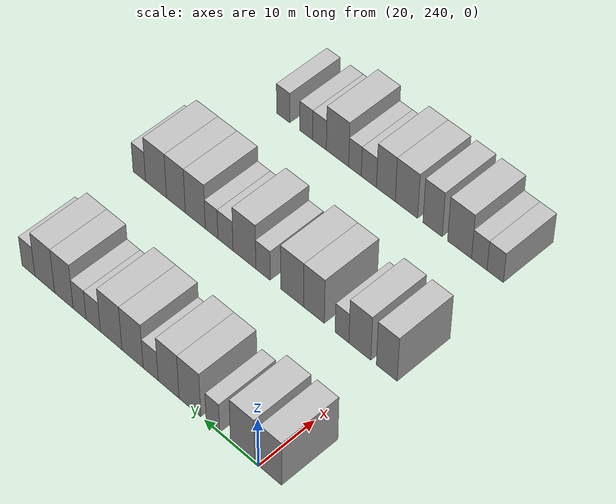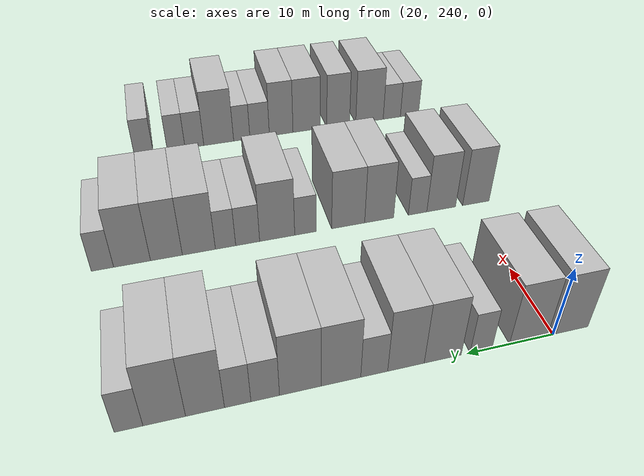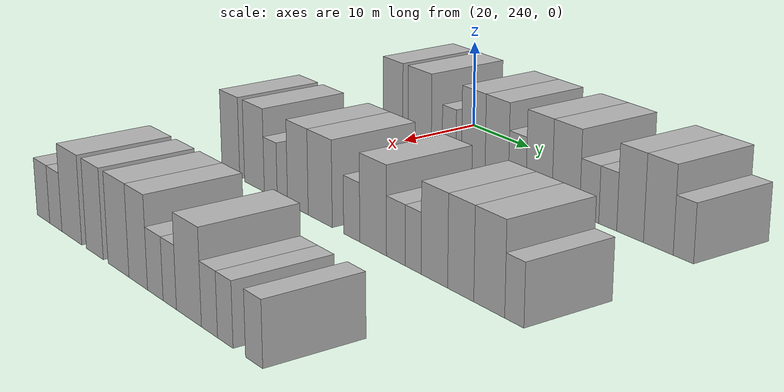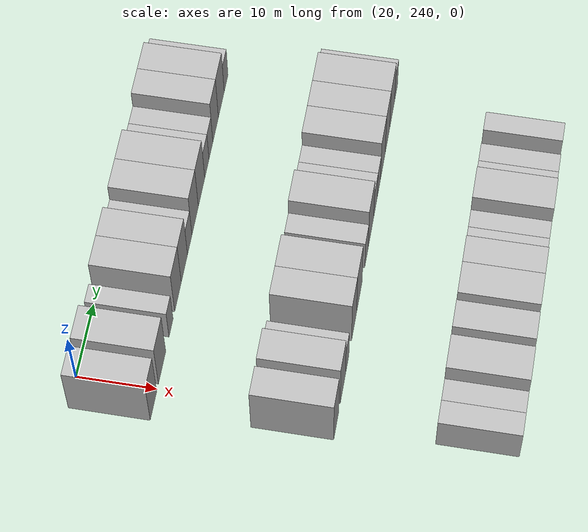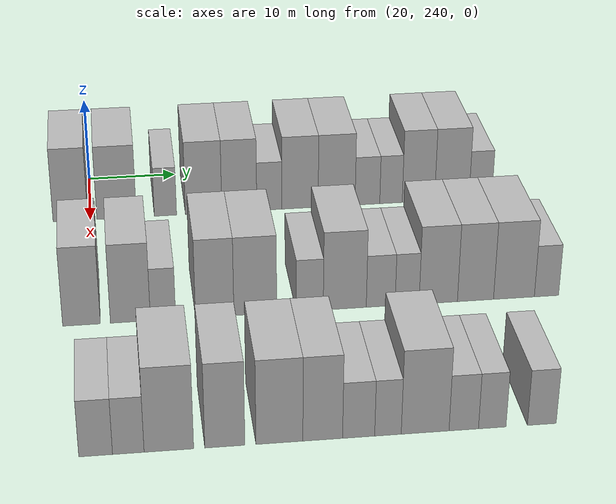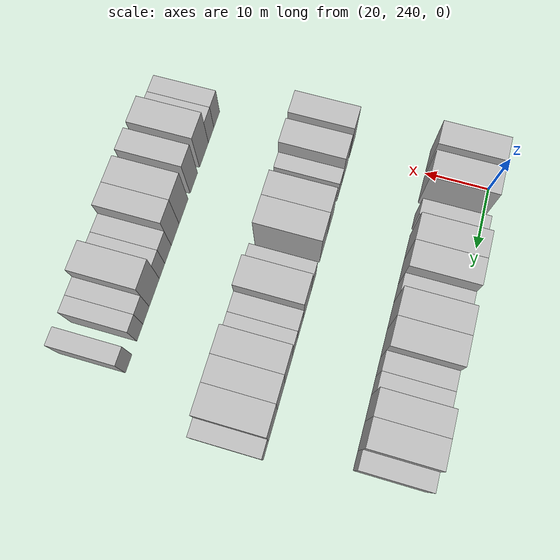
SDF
<sdf version="1.6">
 <world name="default">
  <model name="building_150">
   <static>1</static>
   <pose>25.0000 237.7819 0 0.000000 0.000000 0.000000</pose>
   <link name="link">
    <pose>0 0 4.50 0 0 0</pose>
    <collision name="collision"><geometry><box><size>10.0000 3.8595 9.0000</size></box></geometry></collision>
    <visual name="visual">
     <cast_shadows>0</cast_shadows>
     <geometry><box><size>10.0000 3.8595 9.0000</size></box></geometry>
     <material>
      <script>
       <uri>model://HANNAS_wall/materials/scripts</uri>
       <uri>model://HANNAS_wall/materials/textures</uri>
       <name>vrc/HANNAS_wall</name>
      </script>
     </material>
    </visual>
   </link>
  </model>
  <model name="building_151">
   <static>1</static>
   <pose>25.0000 242.9237 0 0.000000 0.000000 0.000000</pose>
   <link name="link">
    <pose>0 0 4.50 0 0 0</pose>
    <collision name="collision"><geometry><box><size>10.0000 4.4240 9.0000</size></box></geometry></collision>
    <visual name="visual">
     <cast_shadows>0</cast_shadows>
     <geometry><box><size>10.0000 4.4240 9.0000</size></box></geometry>
     <material>
      <script>
       <uri>model://HANNAS_wall/materials/scripts</uri>
       <uri>model://HANNAS_wall/materials/textures</uri>
       <name>vrc/HANNAS_wall</name>
      </script>
     </material>
    </visual>
   </link>
  </model>
  <model name="building_152">
   <static>1</static>
   <pose>25.0000 248.3873 0 0.000000 0.000000 0.000000</pose>
   <link name="link">
    <pose>0 0 3.00 0 0 0</pose>
    <collision name="collision"><geometry><box><size>10.0000 2.5032 6.0000</size></box></geometry></collision>
    <visual name="visual">
     <cast_shadows>0</cast_shadows>
     <geometry><box><size>10.0000 2.5032 6.0000</size></box></geometry>
     <material>
      <script>
       <uri>model://HANNAS_wall/materials/scripts</uri>
       <uri>model://HANNAS_wall/materials/textures</uri>
       <name>vrc/HANNAS_wall</name>
      </script>
     </material>
    </visual>
   </link>
  </model>
  <model name="building_153">
   <static>1</static>
   <pose>25.0000 252.6890 0 0.000000 0.000000 0.000000</pose>
   <link name="link">
    <pose>0 0 4.50 0 0 0</pose>
    <collision name="collision"><geometry><box><size>10.0000 4.1002 9.0000</size></box></geometry></collision>
    <visual name="visual">
     <cast_shadows>0</cast_shadows>
     <geometry><box><size>10.0000 4.1002 9.0000</size></box></geometry>
     <material>
      <script>
       <uri>model://HANNAS_wall/materials/scripts</uri>
       <uri>model://HANNAS_wall/materials/textures</uri>
       <name>vrc/HANNAS_wall</name>
      </script>
     </material>
    </visual>
   </link>
  </model>
  <model name="building_154">
   <static>1</static>
   <pose>25.0000 256.7204 0 0.000000 0.000000 0.000000</pose>
   <link name="link">
    <pose>0 0 4.50 0 0 0</pose>
    <collision name="collision"><geometry><box><size>10.0000 3.9628 9.0000</size></box></geometry></collision>
    <visual name="visual">
     <cast_shadows>0</cast_shadows>
     <geometry><box><size>10.0000 3.9628 9.0000</size></box></geometry>
     <material>
      <script>
       <uri>model://HANNAS_wall/materials/scripts</uri>
       <uri>model://HANNAS_wall/materials/textures</uri>
       <name>vrc/HANNAS_wall</name>
      </script>
     </material>
    </visual>
   </link>
  </model>
  <model name="building_155">
   <static>1</static>
   <pose>25.0000 260.1354 0 0.000000 0.000000 0.000000</pose>
   <link name="link">
    <pose>0 0 3.00 0 0 0</pose>
    <collision name="collision"><geometry><box><size>10.0000 2.8671 6.0000</size></box></geometry></collision>
    <visual name="visual">
     <cast_shadows>0</cast_shadows>
     <geometry><box><size>10.0000 2.8671 6.0000</size></box></geometry>
     <material>
      <script>
       <uri>model://HANNAS_wall/materials/scripts</uri>
       <uri>model://HANNAS_wall/materials/textures</uri>
       <name>vrc/HANNAS_wall</name>
      </script>
     </material>
    </visual>
   </link>
  </model>
  <model name="building_156">
   <static>1</static>
   <pose>25.0000 263.6339 0 0.000000 0.000000 0.000000</pose>
   <link name="link">
    <pose>0 0 4.50 0 0 0</pose>
    <collision name="collision"><geometry><box><size>10.0000 4.1300 9.0000</size></box></geometry></collision>
    <visual name="visual">
     <cast_shadows>0</cast_shadows>
     <geometry><box><size>10.0000 4.1300 9.0000</size></box></geometry>
     <material>
      <script>
       <uri>model://HANNAS_wall/materials/scripts</uri>
       <uri>model://HANNAS_wall/materials/textures</uri>
       <name>vrc/HANNAS_wall</name>
      </script>
     </material>
    </visual>
   </link>
  </model>
  <model name="building_157">
   <static>1</static>
   <pose>25.0000 267.8165 0 0.000000 0.000000 0.000000</pose>
   <link name="link">
    <pose>0 0 4.50 0 0 0</pose>
    <collision name="collision"><geometry><box><size>10.0000 4.2351 9.0000</size></box></geometry></collision>
    <visual name="visual">
     <cast_shadows>0</cast_shadows>
     <geometry><box><size>10.0000 4.2351 9.0000</size></box></geometry>
     <material>
      <script>
       <uri>model://HANNAS_wall/materials/scripts</uri>
       <uri>model://HANNAS_wall/materials/textures</uri>
       <name>vrc/HANNAS_wall</name>
      </script>
     </material>
    </visual>
   </link>
  </model>
  <model name="building_158">
   <static>1</static>
   <pose>25.0000 271.3555 0 0.000000 0.000000 0.000000</pose>
   <link name="link">
    <pose>0 0 3.00 0 0 0</pose>
    <collision name="collision"><geometry><box><size>10.0000 2.8431 6.0000</size></box></geometry></collision>
    <visual name="visual">
     <cast_shadows>0</cast_shadows>
     <geometry><box><size>10.0000 2.8431 6.0000</size></box></geometry>
     <material>
      <script>
       <uri>model://HANNAS_wall/materials/scripts</uri>
       <uri>model://HANNAS_wall/materials/textures</uri>
       <name>vrc/HANNAS_wall</name>
      </script>
     </material>
    </visual>
   </link>
  </model>
  <model name="building_159">
   <static>1</static>
   <pose>25.0000 274.0740 0 0.000000 0.000000 0.000000</pose>
   <link name="link">
    <pose>0 0 3.00 0 0 0</pose>
    <collision name="collision"><geometry><box><size>10.0000 2.5939 6.0000</size></box></geometry></collision>
    <visual name="visual">
     <cast_shadows>0</cast_shadows>
     <geometry><box><size>10.0000 2.5939 6.0000</size></box></geometry>
     <material>
      <script>
       <uri>model://HANNAS_wall/materials/scripts</uri>
       <uri>model://HANNAS_wall/materials/textures</uri>
       <name>vrc/HANNAS_wall</name>
      </script>
     </material>
    </visual>
   </link>
  </model>
  <model name="building_160">
   <static>1</static>
   <pose>25.0000 277.2462 0 0.000000 0.000000 0.000000</pose>
   <link name="link">
    <pose>0 0 4.50 0 0 0</pose>
    <collision name="collision"><geometry><box><size>10.0000 3.7505 9.0000</size></box></geometry></collision>
    <visual name="visual">
     <cast_shadows>0</cast_shadows>
     <geometry><box><size>10.0000 3.7505 9.0000</size></box></geometry>
     <material>
      <script>
       <uri>model://HANNAS_wall/materials/scripts</uri>
       <uri>model://HANNAS_wall/materials/textures</uri>
       <name>vrc/HANNAS_wall</name>
      </script>
     </material>
    </visual>
   </link>
  </model>
  <model name="building_161">
   <static>1</static>
   <pose>25.0000 281.1280 0 0.000000 0.000000 0.000000</pose>
   <link name="link">
    <pose>0 0 4.50 0 0 0</pose>
    <collision name="collision"><geometry><box><size>10.0000 4.0131 9.0000</size></box></geometry></collision>
    <visual name="visual">
     <cast_shadows>0</cast_shadows>
     <geometry><box><size>10.0000 4.0131 9.0000</size></box></geometry>
     <material>
      <script>
       <uri>model://HANNAS_wall/materials/scripts</uri>
       <uri>model://HANNAS_wall/materials/textures</uri>
       <name>vrc/HANNAS_wall</name>
      </script>
     </material>
    </visual>
   </link>
  </model>
  <model name="building_162">
   <static>1</static>
   <pose>25.0000 284.4673 0 0.000000 0.000000 0.000000</pose>
   <link name="link">
    <pose>0 0 3.00 0 0 0</pose>
    <collision name="collision"><geometry><box><size>10.0000 2.6654 6.0000</size></box></geometry></collision>
    <visual name="visual">
     <cast_shadows>0</cast_shadows>
     <geometry><box><size>10.0000 2.6654 6.0000</size></box></geometry>
     <material>
      <script>
       <uri>model://HANNAS_wall/materials/scripts</uri>
       <uri>model://HANNAS_wall/materials/textures</uri>
       <name>vrc/HANNAS_wall</name>
      </script>
     </material>
    </visual>
   </link>
  </model>
  <model name="building_323">
   <static>1</static>
   <pose>47.0000 238.8396 0 0.000000 0.000000 0.000000</pose>
   <link name="link">
    <pose>0 0 4.50 0 0 0</pose>
    <collision name="collision"><geometry><box><size>10.0000 3.7659 9.0000</size></box></geometry></collision>
    <visual name="visual">
     <cast_shadows>0</cast_shadows>
     <geometry><box><size>10.0000 3.7659 9.0000</size></box></geometry>
     <material>
      <script>
       <uri>model://HANNAS_wall/materials/scripts</uri>
       <uri>model://HANNAS_wall/materials/textures</uri>
       <name>vrc/HANNAS_wall</name>
      </script>
     </material>
    </visual>
   </link>
  </model>
  <model name="building_324">
   <static>1</static>
   <pose>47.0000 243.7291 0 0.000000 0.000000 0.000000</pose>
   <link name="link">
    <pose>0 0 4.50 0 0 0</pose>
    <collision name="collision"><geometry><box><size>10.0000 4.0131 9.0000</size></box></geometry></collision>
    <visual name="visual">
     <cast_shadows>0</cast_shadows>
     <geometry><box><size>10.0000 4.0131 9.0000</size></box></geometry>
     <material>
      <script>
       <uri>model://HANNAS_wall/materials/scripts</uri>
       <uri>model://HANNAS_wall/materials/textures</uri>
       <name>vrc/HANNAS_wall</name>
      </script>
     </material>
    </visual>
   </link>
  </model>
  <model name="building_325">
   <static>1</static>
   <pose>47.0000 247.0107 0 0.000000 0.000000 0.000000</pose>
   <link name="link">
    <pose>0 0 3.00 0 0 0</pose>
    <collision name="collision"><geometry><box><size>10.0000 2.5500 6.0000</size></box></geometry></collision>
    <visual name="visual">
     <cast_shadows>0</cast_shadows>
     <geometry><box><size>10.0000 2.5500 6.0000</size></box></geometry>
     <material>
      <script>
       <uri>model://HANNAS_wall/materials/scripts</uri>
       <uri>model://HANNAS_wall/materials/textures</uri>
       <name>vrc/HANNAS_wall</name>
      </script>
     </material>
    </visual>
   </link>
  </model>
  <model name="building_326">
   <static>1</static>
   <pose>47.0000 252.2330 0 0.000000 0.000000 0.000000</pose>
   <link name="link">
    <pose>0 0 4.50 0 0 0</pose>
    <collision name="collision"><geometry><box><size>10.0000 3.8947 9.0000</size></box></geometry></collision>
    <visual name="visual">
     <cast_shadows>0</cast_shadows>
     <geometry><box><size>10.0000 3.8947 9.0000</size></box></geometry>
     <material>
      <script>
       <uri>model://HANNAS_wall/materials/scripts</uri>
       <uri>model://HANNAS_wall/materials/textures</uri>
       <name>vrc/HANNAS_wall</name>
      </script>
     </material>
    </visual>
   </link>
  </model>
  <model name="building_327">
   <static>1</static>
   <pose>47.0000 256.3607 0 0.000000 0.000000 0.000000</pose>
   <link name="link">
    <pose>0 0 4.50 0 0 0</pose>
    <collision name="collision"><geometry><box><size>10.0000 4.3606 9.0000</size></box></geometry></collision>
    <visual name="visual">
     <cast_shadows>0</cast_shadows>
     <geometry><box><size>10.0000 4.3606 9.0000</size></box></geometry>
     <material>
      <script>
       <uri>model://HANNAS_wall/materials/scripts</uri>
       <uri>model://HANNAS_wall/materials/textures</uri>
       <name>vrc/HANNAS_wall</name>
      </script>
     </material>
    </visual>
   </link>
  </model>
  <model name="building_328">
   <static>1</static>
   <pose>47.0000 261.9287 0 0.000000 0.000000 0.000000</pose>
   <link name="link">
    <pose>0 0 3.00 0 0 0</pose>
    <collision name="collision"><geometry><box><size>10.0000 2.7754 6.0000</size></box></geometry></collision>
    <visual name="visual">
     <cast_shadows>0</cast_shadows>
     <geometry><box><size>10.0000 2.7754 6.0000</size></box></geometry>
     <material>
      <script>
       <uri>model://HANNAS_wall/materials/scripts</uri>
       <uri>model://HANNAS_wall/materials/textures</uri>
       <name>vrc/HANNAS_wall</name>
      </script>
     </material>
    </visual>
   </link>
  </model>
  <model name="building_329">
   <static>1</static>
   <pose>47.0000 265.5324 0 0.000000 0.000000 0.000000</pose>
   <link name="link">
    <pose>0 0 4.50 0 0 0</pose>
    <collision name="collision"><geometry><box><size>10.0000 4.4320 9.0000</size></box></geometry></collision>
    <visual name="visual">
     <cast_shadows>0</cast_shadows>
     <geometry><box><size>10.0000 4.4320 9.0000</size></box></geometry>
     <material>
      <script>
       <uri>model://HANNAS_wall/materials/scripts</uri>
       <uri>model://HANNAS_wall/materials/textures</uri>
       <name>vrc/HANNAS_wall</name>
      </script>
     </material>
    </visual>
   </link>
  </model>
  <model name="building_330">
   <static>1</static>
   <pose>47.0000 269.2392 0 0.000000 0.000000 0.000000</pose>
   <link name="link">
    <pose>0 0 3.00 0 0 0</pose>
    <collision name="collision"><geometry><box><size>10.0000 2.9815 6.0000</size></box></geometry></collision>
    <visual name="visual">
     <cast_shadows>0</cast_shadows>
     <geometry><box><size>10.0000 2.9815 6.0000</size></box></geometry>
     <material>
      <script>
       <uri>model://HANNAS_wall/materials/scripts</uri>
       <uri>model://HANNAS_wall/materials/textures</uri>
       <name>vrc/HANNAS_wall</name>
      </script>
     </material>
    </visual>
   </link>
  </model>
  <model name="building_331">
   <static>1</static>
   <pose>47.0000 271.9747 0 0.000000 0.000000 0.000000</pose>
   <link name="link">
    <pose>0 0 3.00 0 0 0</pose>
    <collision name="collision"><geometry><box><size>10.0000 2.4894 6.0000</size></box></geometry></collision>
    <visual name="visual">
     <cast_shadows>0</cast_shadows>
     <geometry><box><size>10.0000 2.4894 6.0000</size></box></geometry>
     <material>
      <script>
       <uri>model://HANNAS_wall/materials/scripts</uri>
       <uri>model://HANNAS_wall/materials/textures</uri>
       <name>vrc/HANNAS_wall</name>
      </script>
     </material>
    </visual>
   </link>
  </model>
  <model name="building_332">
   <static>1</static>
   <pose>47.0000 275.2201 0 0.000000 0.000000 0.000000</pose>
   <link name="link">
    <pose>0 0 4.50 0 0 0</pose>
    <collision name="collision"><geometry><box><size>10.0000 4.0013 9.0000</size></box></geometry></collision>
    <visual name="visual">
     <cast_shadows>0</cast_shadows>
     <geometry><box><size>10.0000 4.0013 9.0000</size></box></geometry>
     <material>
      <script>
       <uri>model://HANNAS_wall/materials/scripts</uri>
       <uri>model://HANNAS_wall/materials/textures</uri>
       <name>vrc/HANNAS_wall</name>
      </script>
     </material>
    </visual>
   </link>
  </model>
  <model name="building_333">
   <static>1</static>
   <pose>47.0000 279.1128 0 0.000000 0.000000 0.000000</pose>
   <link name="link">
    <pose>0 0 4.50 0 0 0</pose>
    <collision name="collision"><geometry><box><size>10.0000 3.7842 9.0000</size></box></geometry></collision>
    <visual name="visual">
     <cast_shadows>0</cast_shadows>
     <geometry><box><size>10.0000 3.7842 9.0000</size></box></geometry>
     <material>
      <script>
       <uri>model://HANNAS_wall/materials/scripts</uri>
       <uri>model://HANNAS_wall/materials/textures</uri>
       <name>vrc/HANNAS_wall</name>
      </script>
     </material>
    </visual>
   </link>
  </model>
  <model name="building_334">
   <static>1</static>
   <pose>47.0000 283.1528 0 0.000000 0.000000 0.000000</pose>
   <link name="link">
    <pose>0 0 4.50 0 0 0</pose>
    <collision name="collision"><geometry><box><size>10.0000 4.2956 9.0000</size></box></geometry></collision>
    <visual name="visual">
     <cast_shadows>0</cast_shadows>
     <geometry><box><size>10.0000 4.2956 9.0000</size></box></geometry>
     <material>
      <script>
       <uri>model://HANNAS_wall/materials/scripts</uri>
       <uri>model://HANNAS_wall/materials/textures</uri>
       <name>vrc/HANNAS_wall</name>
      </script>
     </material>
    </visual>
   </link>
  </model>
  <model name="building_335">
   <static>1</static>
   <pose>47.0000 286.5836 0 0.000000 0.000000 0.000000</pose>
   <link name="link">
    <pose>0 0 3.00 0 0 0</pose>
    <collision name="collision"><geometry><box><size>10.0000 2.5661 6.0000</size></box></geometry></collision>
    <visual name="visual">
     <cast_shadows>0</cast_shadows>
     <geometry><box><size>10.0000 2.5661 6.0000</size></box></geometry>
     <material>
      <script>
       <uri>model://HANNAS_wall/materials/scripts</uri>
       <uri>model://HANNAS_wall/materials/textures</uri>
       <name>vrc/HANNAS_wall</name>
      </script>
     </material>
    </visual>
   </link>
  </model>
  <model name="building_515">
   <static>1</static>
   <pose>69.0000 239.9106 0 0.000000 0.000000 0.000000</pose>
   <link name="link">
    <pose>0 0 3.00 0 0 0</pose>
    <collision name="collision"><geometry><box><size>10.0000 2.9909 6.0000</size></box></geometry></collision>
    <visual name="visual">
     <cast_shadows>0</cast_shadows>
     <geometry><box><size>10.0000 2.9909 6.0000</size></box></geometry>
     <material>
      <script>
       <uri>model://HANNAS_wall/materials/scripts</uri>
       <uri>model://HANNAS_wall/materials/textures</uri>
       <name>vrc/HANNAS_wall</name>
      </script>
     </material>
    </visual>
   </link>
  </model>
  <model name="building_516">
   <static>1</static>
   <pose>69.0000 242.8098 0 0.000000 0.000000 0.000000</pose>
   <link name="link">
    <pose>0 0 3.00 0 0 0</pose>
    <collision name="collision"><geometry><box><size>10.0000 2.8075 6.0000</size></box></geometry></collision>
    <visual name="visual">
     <cast_shadows>0</cast_shadows>
     <geometry><box><size>10.0000 2.8075 6.0000</size></box></geometry>
     <material>
      <script>
       <uri>model://HANNAS_wall/materials/scripts</uri>
       <uri>model://HANNAS_wall/materials/textures</uri>
       <name>vrc/HANNAS_wall</name>
      </script>
     </material>
    </visual>
   </link>
  </model>
  <model name="building_517">
   <static>1</static>
   <pose>69.0000 246.4276 0 0.000000 0.000000 0.000000</pose>
   <link name="link">
    <pose>0 0 4.50 0 0 0</pose>
    <collision name="collision"><geometry><box><size>10.0000 4.4281 9.0000</size></box></geometry></collision>
    <visual name="visual">
     <cast_shadows>0</cast_shadows>
     <geometry><box><size>10.0000 4.4281 9.0000</size></box></geometry>
     <material>
      <script>
       <uri>model://HANNAS_wall/materials/scripts</uri>
       <uri>model://HANNAS_wall/materials/textures</uri>
       <name>vrc/HANNAS_wall</name>
      </script>
     </material>
    </visual>
   </link>
  </model>
  <model name="building_518">
   <static>1</static>
   <pose>69.0000 251.4443 0 0.000000 0.000000 0.000000</pose>
   <link name="link">
    <pose>0 0 4.50 0 0 0</pose>
    <collision name="collision"><geometry><box><size>10.0000 3.6053 9.0000</size></box></geometry></collision>
    <visual name="visual">
     <cast_shadows>0</cast_shadows>
     <geometry><box><size>10.0000 3.6053 9.0000</size></box></geometry>
     <material>
      <script>
       <uri>model://HANNAS_wall/materials/scripts</uri>
       <uri>model://HANNAS_wall/materials/textures</uri>
       <name>vrc/HANNAS_wall</name>
      </script>
     </material>
    </visual>
   </link>
  </model>
  <model name="building_519">
   <static>1</static>
   <pose>69.0000 256.3707 0 0.000000 0.000000 0.000000</pose>
   <link name="link">
    <pose>0 0 4.50 0 0 0</pose>
    <collision name="collision"><geometry><box><size>10.0000 4.2476 9.0000</size></box></geometry></collision>
    <visual name="visual">
     <cast_shadows>0</cast_shadows>
     <geometry><box><size>10.0000 4.2476 9.0000</size></box></geometry>
     <material>
      <script>
       <uri>model://HANNAS_wall/materials/scripts</uri>
       <uri>model://HANNAS_wall/materials/textures</uri>
       <name>vrc/HANNAS_wall</name>
      </script>
     </material>
    </visual>
   </link>
  </model>
  <model name="building_520">
   <static>1</static>
   <pose>69.0000 260.3013 0 0.000000 0.000000 0.000000</pose>
   <link name="link">
    <pose>0 0 4.50 0 0 0</pose>
    <collision name="collision"><geometry><box><size>10.0000 3.6137 9.0000</size></box></geometry></collision>
    <visual name="visual">
     <cast_shadows>0</cast_shadows>
     <geometry><box><size>10.0000 3.6137 9.0000</size></box></geometry>
     <material>
      <script>
       <uri>model://HANNAS_wall/materials/scripts</uri>
       <uri>model://HANNAS_wall/materials/textures</uri>
       <name>vrc/HANNAS_wall</name>
      </script>
     </material>
    </visual>
   </link>
  </model>
  <model name="building_521">
   <static>1</static>
   <pose>69.0000 263.5767 0 0.000000 0.000000 0.000000</pose>
   <link name="link">
    <pose>0 0 3.00 0 0 0</pose>
    <collision name="collision"><geometry><box><size>10.0000 2.9371 6.0000</size></box></geometry></collision>
    <visual name="visual">
     <cast_shadows>0</cast_shadows>
     <geometry><box><size>10.0000 2.9371 6.0000</size></box></geometry>
     <material>
      <script>
       <uri>model://HANNAS_wall/materials/scripts</uri>
       <uri>model://HANNAS_wall/materials/textures</uri>
       <name>vrc/HANNAS_wall</name>
      </script>
     </material>
    </visual>
   </link>
  </model>
  <model name="building_522">
   <static>1</static>
   <pose>69.0000 266.2631 0 0.000000 0.000000 0.000000</pose>
   <link name="link">
    <pose>0 0 3.00 0 0 0</pose>
    <collision name="collision"><geometry><box><size>10.0000 2.4357 6.0000</size></box></geometry></collision>
    <visual name="visual">
     <cast_shadows>0</cast_shadows>
     <geometry><box><size>10.0000 2.4357 6.0000</size></box></geometry>
     <material>
      <script>
       <uri>model://HANNAS_wall/materials/scripts</uri>
       <uri>model://HANNAS_wall/materials/textures</uri>
       <name>vrc/HANNAS_wall</name>
      </script>
     </material>
    </visual>
   </link>
  </model>
  <model name="building_523">
   <static>1</static>
   <pose>69.0000 269.6850 0 0.000000 0.000000 0.000000</pose>
   <link name="link">
    <pose>0 0 4.50 0 0 0</pose>
    <collision name="collision"><geometry><box><size>10.0000 4.4081 9.0000</size></box></geometry></collision>
    <visual name="visual">
     <cast_shadows>0</cast_shadows>
     <geometry><box><size>10.0000 4.4081 9.0000</size></box></geometry>
     <material>
      <script>
       <uri>model://HANNAS_wall/materials/scripts</uri>
       <uri>model://HANNAS_wall/materials/textures</uri>
       <name>vrc/HANNAS_wall</name>
      </script>
     </material>
    </visual>
   </link>
  </model>
  <model name="building_524">
   <static>1</static>
   <pose>69.0000 273.2536 0 0.000000 0.000000 0.000000</pose>
   <link name="link">
    <pose>0 0 3.00 0 0 0</pose>
    <collision name="collision"><geometry><box><size>10.0000 2.7291 6.0000</size></box></geometry></collision>
    <visual name="visual">
     <cast_shadows>0</cast_shadows>
     <geometry><box><size>10.0000 2.7291 6.0000</size></box></geometry>
     <material>
      <script>
       <uri>model://HANNAS_wall/materials/scripts</uri>
       <uri>model://HANNAS_wall/materials/textures</uri>
       <name>vrc/HANNAS_wall</name>
      </script>
     </material>
    </visual>
   </link>
  </model>
  <model name="building_525">
   <static>1</static>
   <pose>69.0000 275.8977 0 0.000000 0.000000 0.000000</pose>
   <link name="link">
    <pose>0 0 3.00 0 0 0</pose>
    <collision name="collision"><geometry><box><size>10.0000 2.5593 6.0000</size></box></geometry></collision>
    <visual name="visual">
     <cast_shadows>0</cast_shadows>
     <geometry><box><size>10.0000 2.5593 6.0000</size></box></geometry>
     <material>
      <script>
       <uri>model://HANNAS_wall/materials/scripts</uri>
       <uri>model://HANNAS_wall/materials/textures</uri>
       <name>vrc/HANNAS_wall</name>
      </script>
     </material>
    </visual>
   </link>
  </model>
  <model name="building_526">
   <static>1</static>
   <pose>69.0000 280.5221 0 0.000000 0.000000 0.000000</pose>
   <link name="link">
    <pose>0 0 3.00 0 0 0</pose>
    <collision name="collision"><geometry><box><size>10.0000 2.6895 6.0000</size></box></geometry></collision>
    <visual name="visual">
     <cast_shadows>0</cast_shadows>
     <geometry><box><size>10.0000 2.6895 6.0000</size></box></geometry>
     <material>
      <script>
       <uri>model://HANNAS_wall/materials/scripts</uri>
       <uri>model://HANNAS_wall/materials/textures</uri>
       <name>vrc/HANNAS_wall</name>
      </script>
     </material>
    </visual>
   </link>
  </model>
 </world>
</sdf>
